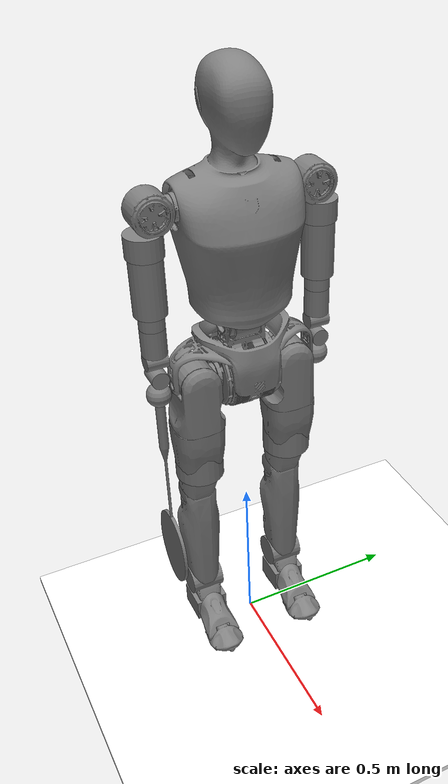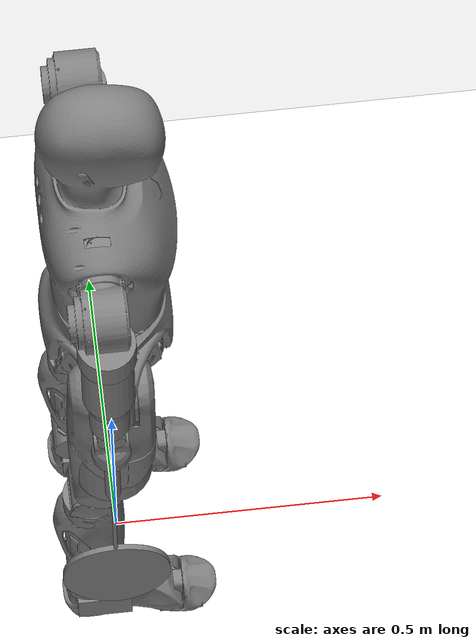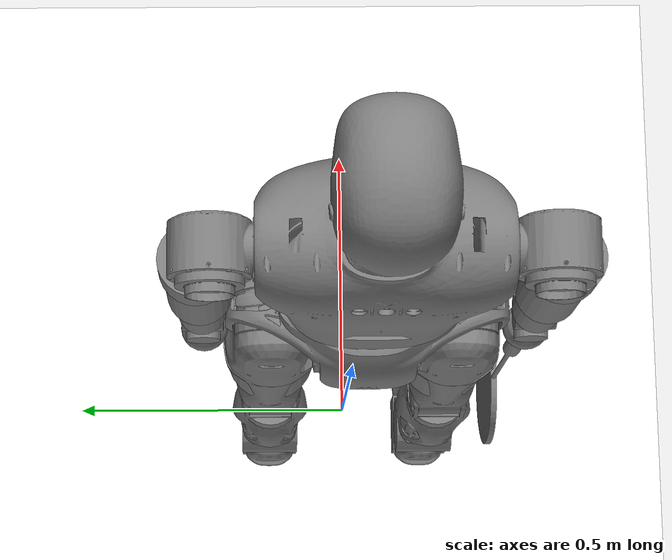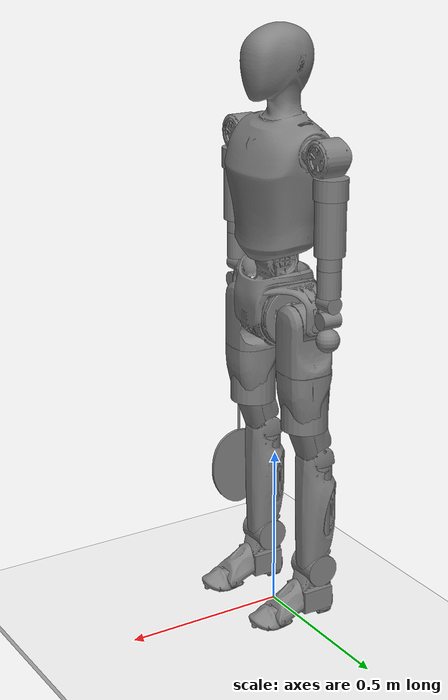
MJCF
<mujoco model="InRealV2_28dof">
  <compiler angle="radian" meshdir="../mesh/"/>
  <option timestep="0.005"/>

  <asset>
    <mesh name="R" content_type="model/stl" file="R.stl"/>
    <mesh name="L1" content_type="model/stl" file="L1.stl"/>
    <mesh name="L11" content_type="model/stl" file="L1.stl" scale="1 -1 1"/>
    <mesh name="L2" content_type="model/stl" file="L2.stl"/>
    <mesh name="L21" content_type="model/stl" file="L2.stl" scale="1 -1 1"/>
    <mesh name="L3" content_type="model/stl" file="L3.stl"/>
    <mesh name="L31" content_type="model/stl" file="L3.stl" scale="1 -1 1"/>
    <mesh name="L4" content_type="model/stl" file="L4.stl"/>
    <mesh name="L41" content_type="model/stl" file="L4.stl" scale="1 -1 1"/>
    <mesh name="L5" content_type="model/stl" file="L5.stl"/>
    <mesh name="L51" content_type="model/stl" file="L5.stl" scale="1 -1 1"/>
    <mesh name="L6" content_type="model/stl" file="L6.stl"/>
    <mesh name="L7" content_type="model/stl" file="L7.stl"/>
    <mesh name="L61" content_type="model/stl" file="L6.stl" scale="1 -1 1"/>
    <mesh name="L71" content_type="model/stl" file="L7.stl" scale="1 -1 1"/>
    <mesh name="W" content_type="model/stl" file="W.stl"/>
    <mesh name="C" content_type="model/stl" file="C.stl"/>
    <mesh name="A1" content_type="model/stl" file="A1.stl"/>
    <mesh name="A11" content_type="model/stl" file="A1.stl" scale="1 -1 1"/>
    <mesh name="A2" content_type="model/stl" file="A2.stl"/>
    <mesh name="A21" content_type="model/stl" file="A2.stl" scale="1 -1 1"/>
    <mesh name="A3" content_type="model/stl" file="A3.stl"/>
    <mesh name="A31" content_type="model/stl" file="A3.stl" scale="1 -1 1"/>
    <mesh name="racket" content_type="model/stl" file="racket.stl"/>
  </asset>

  <!-- setup scene -->
  <statistic center="1.0 0.7 1.0" extent="0.8"/>
  <visual>
    <headlight diffuse="0.6 0.6 0.6" ambient="0.1 0.1 0.1" specular="0.9 0.9 0.9"/>
    <rgba haze="0.15 0.25 0.35 1"/>
    <global azimuth="-140" elevation="-20" offwidth="2080" offheight="1170"/>
  </visual>
  <asset>
     <texture type="skybox" builtin="gradient" rgb1="1 1 1" rgb2="1 1 1" width="800" height="800"/>
    <texture type="2d" name="groundplane" builtin="checker" mark="edge" rgb1="1 1 1" rgb2="1 1 1" markrgb="0 0 0"
      width="300" height="300"/>
    <material name="groundplane" texture="groundplane" texuniform="true" texrepeat="5 5" reflectance="0"/>
    <texture type="skybox" builtin="gradient" rgb1=".4 .5 .6" rgb2="0 0 0" width="100" height="100"/>
    <texture builtin="flat" height="1278" mark="cross" markrgb="1 1 1" name="texgeom" random="0.01" rgb1="0.8 0.6 0.4" rgb2="0.8 0.6 0.4" type="cube" width="127"/>
    <texture name="texplane" builtin="checker" height="512" width="512" rgb1=".2 .3 .4" rgb2=".1 .15 .2" type="2d" />
    <material name="MatPlane" reflectance="0.5" shininess="0.01" specular="0.1" texrepeat="1 1" texture="texplane" texuniform="true" />
    <material name="geom" texture="texgeom" texuniform="true"/>
  </asset>

  <worldbody>
    <geom name="floor" size="100 100 0.01" type="box" material="groundplane" contype="1" conaffinity="1" priority="1"
      friction="1.0 0.001 0.001" condim="3" solimp="0.9 0.95 0.01" solref="0.02 1"/>
    <!-- 地面接触参数设置:
         friction="[μ_滑动摩擦 μ_转滚 μ_扭转]"
         solimp="[impratio 摩擦损失 阻尼]"
         solref="[时间常数 阻尼比]"
         可以根据需要调整这些值来改变机器人与地面的接触特性 -->
    <!-- solimp 的第一个参数就是恢复系数(coefficient of restitution)
         典型值: 0.0=完全塑性 ~ 1.0=完全弹性 -->
    <light diffuse=".5 .5 .5" pos="-3 -3 5" dir="3 3 -5" castshadow="true"/>
    <body name="pelvis" pos="0 0 1.12">
      <camera name="follow_pelvis" pos="-1.2 4.0 1.2" euler="0 0 0" mode="track"/>
      <inertial pos="0 0 -0.146" mass="10.983"
              fullinertia="0.0767 0.067598 0.06648 0.0 0.0002 0.000035"/>
      <geom type="mesh" contype="0" conaffinity="0" group="1" density="0" mesh="R"/>
      <geom size="0.05 0.175 0.05" pos="0 0 -0.035" type="box" group="3"/>
      <freejoint/>
      <body name="left_hip_pitch_link" pos="0 0.1407 -0.159">
        <inertial pos="0 -0.001 0" mass="2.425"
                  fullinertia="0.0039 0.00294 0.003173 0.0 0.0 0.0"/>
        <joint name="left_hip_pitch_joint" pos="0 0 0" axis="0 1 0" range="-1.57 1.57" actuatorfrcrange="-495 495" armature="0.217"/>
        <geom type="mesh" contype="0" conaffinity="0" group="1" density="0" mesh="L1"/>
        <geom size="0.055 0.035" quat="0.707035 0 0.707179 0" type="cylinder"/>
        <body name="left_hip_roll_link" pos="-0.01 0 0">
          <inertial pos="0.00137 0 -0.134" mass="3.246"
                  fullinertia="0.011788 0.013069 0.006657 0.0 -0.000619 0.0"/>
          <joint name="left_hip_roll_joint" pos="0 0 0" axis="1 0 0" range="-0.35 1.57" actuatorfrcrange="-336 336" armature="0.181"/>
          <geom type="mesh" contype="0" conaffinity="0" group="1" density="0" mesh="L2"/>
          <geom size="0.05 0.04" pos="0 0 -0.1" type="cylinder"/>
          <body name="left_hip_yaw_link" pos="0 0 -0.2051">
            <inertial pos="-0.0183 -0.00116 -0.126" mass="4.39"
                  fullinertia="0.022056 0.022705 0.006937 -0.00014 -0.003543 -0.000577"/>
            <joint name="left_hip_yaw_joint" pos="0 0 0" axis="0 0 1" range="-0.785 0.785" actuatorfrcrange="-336 336" armature="0.181"/>
            <geom type="mesh" contype="0" conaffinity="0" group="1" density="0" mesh="L3"/>
            <geom size="0.07 0.075" pos="0 0 -0.05" type="cylinder"/>
            <body name="left_knee_link" pos="-0.043 0 -0.2226">
              <inertial pos="0.00177 -0.001 -0.255" mass="4.497"
                      fullinertia="0.041829 0.041676 0.00548 0.0 -0.001088 -0.000912"/>
              <joint name="left_knee_joint" pos="0 0 0" axis="0 1 0" range="0 1.57" actuatorfrcrange="-216 216" armature="0.0512"/>
              <geom type="mesh" contype="0" conaffinity="0" group="1" density="0" mesh="L4"/>
              <geom size="0.05 0.125" pos="0 0 -0.15" type="cylinder"/>
              <body name="left_ankle_pitch_link" pos="0 0 -0.37">
                <inertial pos="0.0117 0.001 -0.06" mass="0.954"
                      fullinertia="0.001685 0.001915 0.001284 0.000011 0.000243 -0.000055"/>
                <joint name="left_ankle_pitch_joint" pos="0 0 0" axis="0 1 0" range="-0.3 1.05" actuatorfrcrange="-216 216" armature="0.0512"/>
                <geom type="mesh" contype="0" conaffinity="0" group="1" density="0" mesh="L5"/>
                <geom size="0.05 0.05" quat="0.707035 0.707179 0 0" type="cylinder"/>
                <body name="left_ankle_roll_link" pos="0.014 0 -0.085">
                  <site name="Ltoe" size = "0.02"/>
                  <site name="Lsoles" size = "0.01" pos="0 0 -0.06"/>
                  <site name="Lsoles_f" size = "0.01" pos="0.2 0.0 -0.06"/>
                  <inertial pos="0.045 0 -0.022" mass="0.91"
                          fullinertia="0.001 0.00307 0.002570 0.0 0.000236 0.0"/>
                  <joint name="left_ankle_roll_joint" pos="0 0 0" axis="1 0 0" range="-0.26 0.26" actuatorfrcrange="-33 33" armature="0.00472"/>
                  <geom type="mesh" contype="0" conaffinity="0" group="1" density="0" mesh="L6"/>
                  <geom size="0.01 0.025" pos="-0.03 0 -0.056" quat="0.707035 0 0.707179 0" type="cylinder"/>
                  <geom size="0.01 0.0225" pos="-0.026 0.018 -0.056" quat="0.707035 0 0.707179 0" type="cylinder"/>
                  <geom size="0.01 0.015" pos="-0.022 0.036 -0.056" quat="0.707035 0 0.707179 0" type="cylinder"/>
                  <geom size="0.01 0.0225" pos="-0.026 -0.018 -0.056" quat="0.707035 0 0.707179 0" type="cylinder"/>
                  <geom size="0.01 0.015" pos="-0.022 -0.036 -0.056" quat="0.707035 0 0.707179 0" type="cylinder"/>
                  <geom size="0.05 0.05 0.035" pos="0 0 -0.01" type="box"/>
                  <geom pos="0.131255 0 -0.0463567" type="mesh" contype="0" conaffinity="0" group="1" density="0" mesh="L7"/>
                  <geom size="0.01 0.06" pos="0.1412551 0 -0.0563567" quat="0.707035 0 0.707179 0" type="cylinder"/>
                  <geom size="0.01 0.05" pos="0.1412551 0.02 -0.0563567" quat="0.707035 0 0.707179 0" type="cylinder"/>
                  <geom size="0.01 0.04" pos="0.1412551 0.04 -0.0563567" quat="0.707035 0 0.707179 0" type="cylinder"/>
                  <geom size="0.01 0.05" pos="0.1412551 -0.02 -0.0563567" quat="0.707035 0 0.707179 0" type="cylinder"/>
                  <geom size="0.01 0.04" pos="0.1412551 -0.04 -0.0563567" quat="0.707035 0 0.707179 0" type="cylinder"/>
                  <body name="left_toe_link" pos="0.1 0 -0.02"/>
                </body>
              </body>
            </body>
          </body>
        </body>
      </body>
      <body name="right_hip_pitch_link" pos="0 -0.1417 -0.159">
        <inertial pos="0 0.001 0" mass="2.425"
                fullinertia="0.0039 0.00294 0.003173 0.0 0.0 0.0"/>
        <joint name="right_hip_pitch_joint" pos="0 0 0" axis="0 1 0" range="-1.57 1.57" actuatorfrcrange="-495 495" armature="0.217"/>
        <geom type="mesh" contype="0" conaffinity="0" group="1" density="0" mesh="L11"/>
        <geom size="0.055 0.035" quat="0.707035 0 0.707179 0" type="cylinder"/>
        <body name="right_hip_roll_link" pos="-0.01 0 0">
          <inertial pos="0.00137 0 -0.134" mass="3.246"
                  fullinertia="0.011788 0.013069 0.006657 0.0 -0.000619 0.0"/>
          <joint name="right_hip_roll_joint" pos="0 0 0" axis="1 0 0" range="-1.57 0.35" actuatorfrcrange="-336 336" armature="0.181"/>
          <geom type="mesh" contype="0" conaffinity="0" group="1" density="0" mesh="L21"/>
          <geom size="0.05 0.04" pos="0 0 -0.1" type="cylinder"/>
          <body name="right_hip_yaw_link" pos="0 0 -0.2051">
            <inertial pos="-0.0183 0.00116 -0.126" mass="4.39"
                    fullinertia="0.022056 0.022705 0.006937 0.000147 -0.003543 0.000577"/>
            <joint name="right_hip_yaw_joint" pos="0 0 0" axis="0 0 1" range="-0.785 0.785" actuatorfrcrange="-336 336" armature="0.181"/>
            <geom type="mesh" contype="0" conaffinity="0" group="1" density="0" mesh="L31"/>
            <geom size="0.07 0.075" pos="0 0 -0.05" type="cylinder"/>
            <body name="right_knee_link" pos="-0.043 0 -0.2226">
              <inertial pos="0.00177 -0.001 -0.255" mass="4.497"
                      fullinertia="0.041829 0.041676 0.00548 0.0 -0.001088 0.000912"/>
              <joint name="right_knee_joint" pos="0 0 0" axis="0 1 0" range="0 1.57" actuatorfrcrange="-216 216" armature="0.0512"/>
              <geom type="mesh" contype="0" conaffinity="0" group="1" density="0" mesh="L41"/>
              <geom size="0.05 0.125" pos="0 0 -0.15" type="cylinder"/>
              <body name="right_ankle_pitch_link" pos="0 0 -0.37">
                <inertial pos="0.0117 -0.001 -0.06" mass="0.954"
                        fullinertia="0.001685 0.001915 0.001284 -0.000011 0.000243 0.000055"/>
                <joint name="right_ankle_pitch_joint" pos="0 0 0" axis="0 1 0" range="-0.3 1.05" actuatorfrcrange="-216 216" armature="0.0512"/>
                <geom type="mesh" contype="0" conaffinity="0" group="1" density="0" mesh="L51"/>
                <geom size="0.05 0.05" quat="0.707035 0.707179 0 0" type="cylinder"/>
                <body name="right_ankle_roll_link" pos="0.014 0 -0.085">
                  <site name="Rtoe" size = "0.02"/>
                  <site name="Rsoles" size = "0.01" pos="0 0 -0.06"/>
                  <site name="Rsoles_f" size = "0.01" pos="0.2 0.0 -0.06"/>
                  <inertial pos="0.045 0 -0.022" mass="0.91"
                          fullinertia="0.001 0.00307 0.002570 0.0 0.000236 0.0"/>
                  <joint name="right_ankle_roll_joint" pos="0 0 0" axis="1 0 0" range="-0.26 0.26" actuatorfrcrange="-33 33" armature="0.00472"/>
                  <geom type="mesh" contype="0" conaffinity="0" group="1" density="0" mesh="L61"/>
                  <geom size="0.05 0.05 0.035" pos="0 0 -0.01" type="box"/>
                  <geom size="0.01 0.025" pos="-0.03 0 -0.056" quat="0.707035 0 0.707179 0" type="cylinder"/>
                  <geom size="0.01 0.0225" pos="-0.026 0.018 -0.056" quat="0.707035 0 0.707179 0" type="cylinder"/>
                  <geom size="0.01 0.015" pos="-0.022 0.036 -0.056" quat="0.707035 0 0.707179 0" type="cylinder"/>
                  <geom size="0.01 0.0225" pos="-0.026 -0.018 -0.056" quat="0.707035 0 0.707179 0" type="cylinder"/>
                  <geom size="0.01 0.015" pos="-0.022 -0.036 -0.056" quat="0.707035 0 0.707179 0" type="cylinder"/>
                  <geom pos="0.131255 0 -0.0463567" type="mesh" contype="0" conaffinity="0" group="1" density="0" mesh="L71"/>
                  <geom size="0.01 0.06" pos="0.1412551 0 -0.0563567" quat="0.707035 0 0.707179 0" type="cylinder"/>
                  <geom size="0.01 0.05" pos="0.1412551 0.02 -0.0563567" quat="0.707035 0 0.707179 0" type="cylinder"/>
                  <geom size="0.01 0.04" pos="0.1412551 0.04 -0.0563567" quat="0.707035 0 0.707179 0" type="cylinder"/>
                  <geom size="0.01 0.05" pos="0.1412551 -0.02 -0.0563567" quat="0.707035 0 0.707179 0" type="cylinder"/>
                  <geom size="0.01 0.04" pos="0.1412551 -0.04 -0.0563567" quat="0.707035 0 0.707179 0" type="cylinder"/>
                  <body name="right_toe_link" pos="0.1 0 -0.02"/>
                </body>
              </body>
            </body>
          </body>
        </body>
      </body>
      <body name="waist_pitch_link">
        <inertial pos="0 0 0.042" mass="4.139"
                fullinertia="0.014 0.015 0.00576 0.0 0.0 0.0"/>
        <joint name="waist_pitch_joint" pos="0 0 0" axis="0 1 0" range="-1.57 1.57" actuatorfrcrange="-336 336" armature="0.0512"/>
        <geom type="mesh" contype="0" conaffinity="0" group="1" density="0" mesh="W"/>
        <body name="torso_link" pos="-0.018 0 0.3315">
          <site name="IMU" pos="0 0 0" size="0.01"/>
          <inertial pos="0.0082 0 0.011" mass="14.292"
                  fullinertia="0.36 0.276 0.1486 0.0 0.0215 -0.0022"/>
          <joint name="waist_yaw_joint" pos="0 0 0" axis="0 0 1" range="-3.14 3.14" actuatorfrcrange="-336 336" armature="0.0512"/>
          <geom type="mesh" contype="0" conaffinity="0" group="1" density="0" mesh="C"/>
          <geom size="0.05 0.15 0.25" type="box" group="3"/>
          <body name="left_shoulder_pitch_link" pos="0 0.2207 0">
            <inertial pos="0 -0.0036 0" mass="2.451"
                    fullinertia="0.00412 0.00285 0.00330 0.0 0.0 0.0"/>
            <joint name="left_shoulder_pitch_joint" pos="0 0 0" axis="0 1 0" range="-3.14 1.57" actuatorfrcrange="-336 336" armature="0.0512"/>
            <geom type="mesh" contype="0" conaffinity="0" group="1" density="0" mesh="A1"/>
            <body name="left_shoulder_roll_link" pos="0 0.02 0.0">
              <!-- Calculated: cylinder r=0.05, h=0.06, m=1.0, Ixx=Iyy=0.000925, Izz=0.00125 -->
              <inertial pos="0 0.0 -0.08" mass="1.0"
                      fullinertia="0.000925 0.000925 0.00125 0.0 0.0 0.0"/>
              <joint name="left_shoulder_roll_joint" pos="0 0 0" axis="1 0 0" range="-0.13 1.57" actuatorfrcrange="-336 336" armature="0.0512"/>
              <geom size="0.05 0.03" pos="0 0.0 -0.08" type="cylinder"/>
              <body name="left_shoulder_yaw_link" pos="0 0 -0.11">
                <!-- Calculated: cylinder r=0.045, h=0.16, m=2.0, Ixx=Iyy=0.005279, Izz=0.002025 -->
                <inertial pos="0 0.0 -0.08" mass="2.0"
                        fullinertia="0.005279 0.005279 0.002025 0.0 0.0 0.0"/>
                <joint name="left_shoulder_yaw_joint" pos="0 0 0" axis="0 0 1" range="-1.2 1.57" actuatorfrcrange="-136 136" armature="0.03"/>
                <geom size="0.045 0.08" pos="0 0.0 -0.08" type="cylinder"/>
                <body name="left_elbow_link" pos="0 0 -0.16">
                  <!-- Calculated: cylinder r=0.035, h=0.04, m=0.68, Ixx=Iyy=0.000299, Izz=0.0004165 -->
                  <inertial pos="0 0.0 -0.02" mass="0.68"
                          fullinertia="0.000299 0.000299 0.0004165 0.0 0.0 0.0"/>
                  <joint name="left_elbow_joint" pos="0 0 0" axis="0 1 0" range="-2.62 0" actuatorfrcrange="-136 136" armature="0.036"/>
                  <geom size="0.035 0.02" pos="0 0.0 -0.02" type="cylinder"/>
                  <body name="left_wrist_yaw_link" pos="0 0 -0.04">
                    <!-- Calculated: cylinder r=0.035, h=0.08, m=1.0, Ixx=Iyy=0.00084, Izz=0.0006125 -->
                    <inertial pos="0 0.0 -0.04" mass="1.0"
                            fullinertia="0.00084 0.00084 0.0006125 0.0 0.0 0.0"/>
                    <joint name="left_wrist_yaw_joint" pos="0 0 0" axis="0 0 1" range="-1.57 1.2" actuatorfrcrange="-33 33" armature="0.02"/>
                    <geom size="0.035 0.04" pos="0 0.0 -0.04" type="cylinder"/>
                    <body name="left_wrist_pitch_link" pos="0 0 -0.1005">
                      <!-- Calculated: cylinder r=0.025, h=0.06, rotated 90deg around x, m=0.6, Ixx=Izz=0.00027375, Iyy=0.0001875 -->
                      <inertial pos="0 0.0 0" mass="0.6"
                              fullinertia="0.00027375 0.0001875 0.00027375 0.0 0.0 0.0"/>
                      <joint name="left_wrist_pitch_joint" pos="0 0 0" axis="0 1 0" range="-1.57 1.57" actuatorfrcrange="-33 33" armature="0.015"/>
                      <geom size="0.025 0.03" pos="0 0.0 0" euler="1.57 0 0" type="cylinder"/>
                      <body name="left_wrist_roll_link" pos="0 0 -0.05">
                        <!-- Calculated: cylinder r=0.025, h=0.06, rotated 90deg around y, m=0.6, Ixx=0.0001875, Iyy=Izz=0.00027375 -->
                        <inertial pos="0 0.0 0.0" mass="0.6"
                                fullinertia="0.0001875 0.00027375 0.00027375 0.0 0.0 0.0"/>
                        <joint name="left_wrist_roll_joint" pos="0 0 0" axis="1 0 0" range="-1.1 1.2" actuatorfrcrange="-33 33" armature="0.01"/>
                        <geom size="0.025 0.03" pos="0 0.0 0.0" euler="0 1.57 0" type="cylinder"/>
                        <body name="left_hand_link" pos="0 0 -0.025">
                          <!-- Calculated: sphere r=0.035, m=1e-5, Ixx=Iyy=Izz=4.9e-9 -->
                          <inertial pos="0 0.0 -0.035" mass="1e-5"
                                  fullinertia="4.9e-9 4.9e-9 4.9e-9 0.0 0.0 0.0"/>
                          <geom type="sphere" size="0.035" pos="0 0.0 -0.035" contype="1" conaffinity="1" />
                        </body>
                      </body>
                    </body>
                  </body>
                </body>
              </body>
            </body>
          </body>
          <body name="right_shoulder_pitch_link" pos="0 -0.2207 0">
            <inertial pos="0 0.0036 0" mass="2.451"
                    fullinertia="0.00412 0.00285 0.00330 0.0 0.0 0.0"/>
            <joint name="right_shoulder_pitch_joint" pos="0 0 0" axis="0 1 0" range="-3.14 1.57" actuatorfrcrange="-336 336" armature="0.0512"/>
            <geom type="mesh" contype="0" conaffinity="0" group="1" density="0" mesh="A11"/>
            <body name="right_shoulder_roll_link" pos="0 -0.02 0.0">
              <!-- Calculated: cylinder r=0.05, h=0.06, m=1.0, Ixx=Iyy=0.000925, Izz=0.00125 -->
              <inertial pos="0 0.0 -0.08" mass="1.0"
                      fullinertia="0.000925 0.000925 0.00125 0.0 0.0 0.0"/>
              <joint name="right_shoulder_roll_joint" pos="0 0 0" axis="1 0 0" range="-1.57 0.13" actuatorfrcrange="-336 336" armature="0.0512"/>
              <geom size="0.05 0.03" pos="0 0.0 -0.08" type="cylinder"/>
              <body name="right_shoulder_yaw_link" pos="0 0 -0.11">
                <!-- Calculated: cylinder r=0.045, h=0.16, m=2.0, Ixx=Iyy=0.005279, Izz=0.002025 -->
                <inertial pos="0 0.0 -0.08" mass="2.0"
                        fullinertia="0.005279 0.005279 0.002025 0.0 0.0 0.0"/>
                <joint name="right_shoulder_yaw_joint" pos="0 0 0" axis="0 0 1" range="-1.57 1.2" actuatorfrcrange="-136 136" armature="0.03"/>
                <geom size="0.045 0.08" pos="0 0.0 -0.08" type="cylinder"/>
                <body name="right_elbow_link" pos="0 0 -0.16">
                  <!-- Calculated: cylinder r=0.035, h=0.04, m=0.68, Ixx=Iyy=0.000299, Izz=0.0004165 -->
                  <inertial pos="0 0.0 -0.02" mass="0.68"
                          fullinertia="0.000299 0.000299 0.0004165 0.0 0.0 0.0"/>
                  <joint name="right_elbow_joint" pos="0 0 0" axis="0 1 0" range="-2.62 0" actuatorfrcrange="-136 136" armature="0.036"/>
                  <geom size="0.035 0.02" pos="0 0.0 -0.02" type="cylinder"/>
                  <body name="right_wrist_yaw_link" pos="0 0 -0.04">
                    <!-- Calculated: cylinder r=0.035, h=0.08, m=1.0, Ixx=Iyy=0.00084, Izz=0.0006125 -->
                    <inertial pos="0 0.0 -0.04" mass="1.0"
                            fullinertia="0.00084 0.00084 0.0006125 0.0 0.0 0.0"/>
                    <joint name="right_wrist_yaw_joint" pos="0 0 0" axis="0 0 1" range="-1.2 1.57" actuatorfrcrange="-33 33" armature="0.02"/>
                    <geom size="0.035 0.04" pos="0 0.0 -0.04" type="cylinder"/>
                    <body name="right_wrist_pitch_link" pos="0 0 -0.1005">
                      <!-- Calculated: cylinder r=0.025, h=0.06, rotated 90deg around x, m=0.6, Ixx=Izz=0.00027375, Iyy=0.0001875 -->
                      <inertial pos="0 0.0 0" mass="0.6"
                              fullinertia="0.00027375 0.0001875 0.00027375 0.0 0.0 0.0"/>
                      <joint name="right_wrist_pitch_joint" pos="0 0 0" axis="0 1 0" range="-1.57 1.57" actuatorfrcrange="-33 33" armature="0.015"/>
                      <geom size="0.025 0.03" pos="0 0.0 0.0" euler="1.57 0 0" type="cylinder"/>
                      <body name="right_wrist_roll_link" pos="0 0 -0.05">
                        <!-- Calculated: cylinder r=0.025, h=0.06, rotated 90deg around y, m=0.6, Ixx=0.0001875, Iyy=Izz=0.00027375 -->
                        <inertial pos="0 0.0 0.0" mass="0.6"
                                fullinertia="0.0001875 0.00027375 0.00027375 0.0 0.0 0.0"/>
                        <joint name="right_wrist_roll_joint" pos="0 0 0" axis="1 0 0" range="-1.2 1.1" actuatorfrcrange="-33 33" armature="0.01"/>
                        <geom size="0.025 0.03" pos="0 0.0 0.0" euler="0 1.57 0" type="cylinder"/>
                        <body name="right_hand_link" pos="0 0 -0.025">
                          <inertial pos="0 0.0 -0.035" mass="1e-5"
                                  fullinertia="4.9e-9 4.9e-9 4.9e-9 0.0 0.0 0.0"/>
                          <geom type="sphere" size="0.035" pos="0 0.0 -0.035" contype="1" conaffinity="1" />
                          <body name="racket_link" pos="0 0 -0.01">
                            <geom type="mesh" contype="0" conaffinity="0" group="1" density="0" mesh="racket" pos="0 0 -0.055"/>
                            <inertial pos="0.0 0.0 -0.35" mass="0.09"
                                  fullinertia="0.004425 0.004448 0.000227 0.0 0.0 0.0"/>
                          </body>
                        </body>
                      </body>
                    </body>
                  </body>
                </body>
              </body>
            </body>
          </body>
        </body>
      </body>
    </body>
  </worldbody>

  <actuator>
      <motor name = "left_hip_pitch_joint" joint="left_hip_pitch_joint"/>
      <motor name = "left_hip_roll_joint" joint="left_hip_roll_joint"/>
      <motor name = "left_hip_yaw_joint" joint="left_hip_yaw_joint"/>
      <motor name = "left_knee_joint" joint="left_knee_joint"/>
      <motor name = "left_ankle_pitch_joint" joint="left_ankle_pitch_joint"/>
      <motor name = "left_ankle_roll_joint" joint="left_ankle_roll_joint"/>

      <motor name = "right_hip_pitch_joint" joint="right_hip_pitch_joint"/>
      <motor name = "right_hip_roll_joint" joint="right_hip_roll_joint"/>
      <motor name = "right_hip_yaw_joint" joint="right_hip_yaw_joint"/>
      <motor name = "right_knee_joint" joint="right_knee_joint"/>
      <motor name = "right_ankle_pitch_joint" joint="right_ankle_pitch_joint"/>
      <motor name = "right_ankle_roll_joint" joint="right_ankle_roll_joint"/>

      <motor name = "waist_pitch_joint" joint = "waist_pitch_joint"/>
      <motor name = "waist_yaw_joint" joint = "waist_yaw_joint"/>

      <motor name = "left_shoulder_pitch_joint" joint="left_shoulder_pitch_joint"/>
      <motor name = "left_shoulder_roll_joint" joint="left_shoulder_roll_joint"/>
      <motor name = "left_shoulder_yaw_joint" joint="left_shoulder_yaw_joint"/>
      <motor name = "left_elbow_joint" joint="left_elbow_joint"/>
      <motor name = "left_wrist_yaw_joint" joint="left_wrist_yaw_joint"/>
      <motor name = "left_wrist_pitch_joint" joint="left_wrist_pitch_joint"/>
      <motor name = "left_wrist_roll_joint" joint="left_wrist_roll_joint"/>

      <motor name = "right_shoulder_pitch_joint" joint="right_shoulder_pitch_joint"/>
      <motor name = "right_shoulder_roll_joint" joint="right_shoulder_roll_joint"/>
      <motor name = "right_shoulder_yaw_joint" joint="right_shoulder_yaw_joint"/>
      <motor name = "right_elbow_joint" joint="right_elbow_joint"/>
      <motor name = "right_wrist_yaw_joint" joint="right_wrist_yaw_joint"/>
      <motor name = "right_wrist_pitch_joint" joint="right_wrist_pitch_joint"/>
      <motor name = "right_wrist_roll_joint" joint="right_wrist_roll_joint"/>
  </actuator>

  <sensor>
    <accelerometer name="BodyAcc" site="IMU" noise="0.1"/>
    <gyro name="BodyGyro" site="IMU" noise="0.001"/>
  </sensor>
</mujoco>
